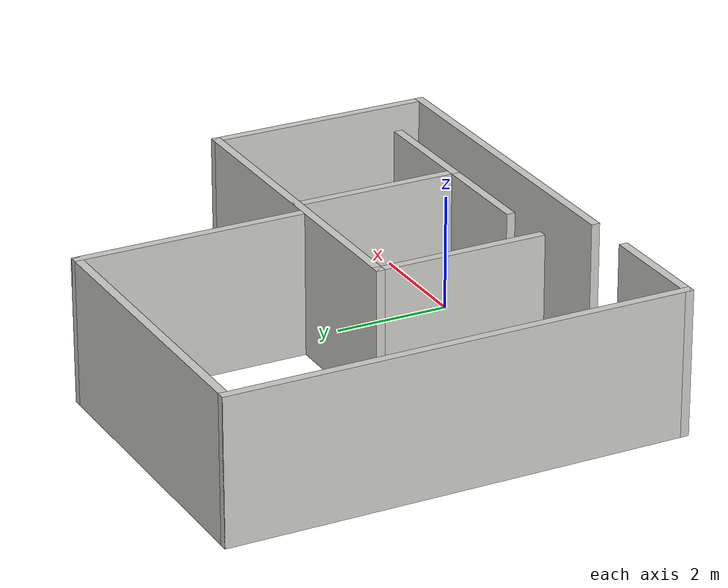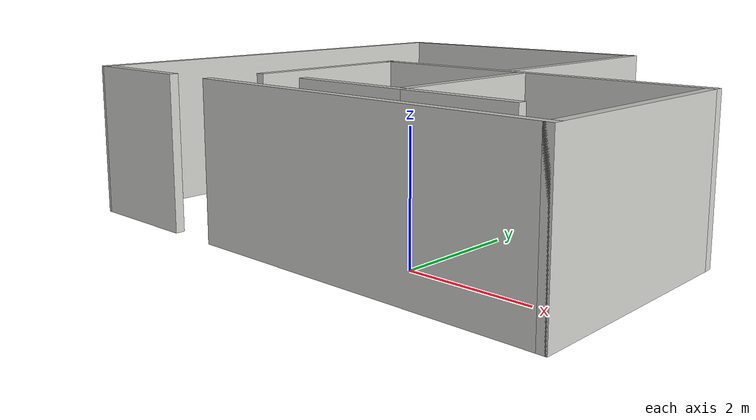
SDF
<?xml version='1.0'?>
<sdf version='1.6'>
  <model name='test_world1'>
    <pose frame=''>-1.47 2.865 0 0 -0 0</pose>
    <link name='Wall_1'>
      <collision name='Wall_1_Collision'>
        <geometry>
          <box>
            <size>6 0.15 2.5</size>
          </box>
        </geometry>
        <pose frame=''>0 0 1.25 0 -0 0</pose>
      </collision>
      <visual name='Wall_1_Visual'>
        <pose frame=''>0 0 1.25 0 -0 0</pose>
        <geometry>
          <box>
            <size>6 0.15 2.5</size>
          </box>
        </geometry>
        <material>
          <script>
            <uri>file://media/materials/scripts/gazebo.material</uri>
            <name>Gazebo/CeilingTiled</name>
          </script>
          <ambient>1 0.764706 0.305882 1</ambient>
        </material>
      </visual>
      <pose frame=''>1.425 -3.925 0 0 -0 0</pose>
    </link>
    <link name='Wall_10'>
      <collision name='Wall_10_Collision'>
        <geometry>
          <box>
            <size>2.03059 0.15 2.5</size>
          </box>
        </geometry>
        <pose frame=''>0 0 1.25 0 -0 0</pose>
      </collision>
      <visual name='Wall_10_Visual'>
        <pose frame=''>0 0 1.25 0 -0 0</pose>
        <geometry>
          <box>
            <size>2.03059 0.15 2.5</size>
          </box>
        </geometry>
        <material>
          <script>
            <uri>file://media/materials/scripts/gazebo.material</uri>
            <name>Gazebo/CeilingTiled</name>
          </script>
          <ambient>1 0.764706 0.305882 1</ambient>
        </material>
      </visual>
      <pose frame=''>2.27432 -2.93006 0 0 -0 0</pose>
    </link>
    <link name='Wall_14'>
      <collision name='Wall_14_Collision'>
        <geometry>
          <box>
            <size>2 0.15 2.5</size>
          </box>
        </geometry>
        <pose frame=''>0 0 1.25 0 -0 0</pose>
      </collision>
      <visual name='Wall_14_Visual'>
        <pose frame=''>0 0 1.25 0 -0 0</pose>
        <geometry>
          <box>
            <size>2 0.15 2.5</size>
          </box>
        </geometry>
        <material>
          <script>
            <uri>file://media/materials/scripts/gazebo.material</uri>
            <name>Gazebo/CeilingTiled</name>
          </script>
          <ambient>1 0.764706 0.305882 1</ambient>
        </material>
      </visual>
      <pose frame=''>-3.425 -3.925 0 0 -0 0</pose>
    </link>
    <link name='Wall_18'>
      <collision name='Wall_18_Collision'>
        <geometry>
          <box>
            <size>8 0.15 2.5</size>
          </box>
        </geometry>
        <pose frame=''>0 0 1.25 0 -0 0</pose>
      </collision>
      <visual name='Wall_18_Visual'>
        <pose frame=''>0 0 1.25 0 -0 0</pose>
        <geometry>
          <box>
            <size>8 0.15 2.5</size>
          </box>
        </geometry>
        <material>
          <script>
            <uri>file://media/materials/scripts/gazebo.material</uri>
            <name>Gazebo/CeilingTiled</name>
          </script>
          <ambient>0.435294 0.796078 0.67451 1</ambient>
        </material>
      </visual>
      <pose frame=''>-4.35 0 0 0 -0 1.5708</pose>
    </link>
    <link name='Wall_19'>
      <collision name='Wall_19_Collision'>
        <geometry>
          <box>
            <size>5.5 0.15 2.5</size>
          </box>
        </geometry>
        <pose frame=''>0 0 1.25 0 -0 0</pose>
      </collision>
      <visual name='Wall_19_Visual'>
        <pose frame=''>0 0 1.25 0 -0 0</pose>
        <geometry>
          <box>
            <size>5.5 0.15 2.5</size>
          </box>
        </geometry>
        <material>
          <script>
            <uri>file://media/materials/scripts/gazebo.material</uri>
            <name>Gazebo/CeilingTiled</name>
          </script>
          <ambient>1 0.764706 0.305882 1</ambient>
        </material>
      </visual>
      <pose frame=''>-1.675 3.925 0 0 -0 0</pose>
    </link>
    <link name='Wall_2'>
      <collision name='Wall_2_Collision'>
        <geometry>
          <box>
            <size>4 0.15 2.5</size>
          </box>
        </geometry>
        <pose frame=''>0 0 1.25 0 -0 0</pose>
      </collision>
      <visual name='Wall_2_Visual'>
        <pose frame=''>0 0 1.25 0 -0 0</pose>
        <geometry>
          <box>
            <size>4 0.15 2.5</size>
          </box>
        </geometry>
        <material>
          <script>
            <uri>file://media/materials/scripts/gazebo.material</uri>
            <name>Gazebo/CeilingTiled</name>
          </script>
          <ambient>1 0.764706 0.305882 1</ambient>
        </material>
      </visual>
      <pose frame=''>4.35 -2 0 0 -0 1.5708</pose>
    </link>
    <link name='Wall_20'>
      <collision name='Wall_20_Collision'>
        <geometry>
          <box>
            <size>4 0.15 2.5</size>
          </box>
        </geometry>
        <pose frame=''>0 0 1.25 0 -0 0</pose>
      </collision>
      <visual name='Wall_20_Visual'>
        <pose frame=''>0 0 1.25 0 -0 0</pose>
        <geometry>
          <box>
            <size>4 0.15 2.5</size>
          </box>
        </geometry>
        <material>
          <script>
            <uri>file://media/materials/scripts/gazebo.material</uri>
            <name>Gazebo/CeilingTiled</name>
          </script>
          <ambient>1 0.764706 0.305882 1</ambient>
        </material>
      </visual>
      <pose frame=''>1 2 0 0 0 -1.5708</pose>
    </link>
    <link name='Wall_4'>
      <collision name='Wall_4_Collision'>
        <geometry>
          <box>
            <size>6 0.15 2.5</size>
          </box>
        </geometry>
        <pose frame=''>0 0 1.25 0 -0 0</pose>
      </collision>
      <visual name='Wall_4_Visual'>
        <pose frame=''>0 0 1.25 0 -0 0</pose>
        <geometry>
          <box>
            <size>6 0.15 2.5</size>
          </box>
        </geometry>
        <material>
          <script>
            <uri>file://media/materials/scripts/gazebo.material</uri>
            <name>Gazebo/CeilingTiled</name>
          </script>
          <ambient>1 0.764706 0.305882 1</ambient>
        </material>
      </visual>
      <pose frame=''>1.425 -0.075 0 0 -0 3.14159</pose>
    </link>
    <link name='Wall_5'>
      <collision name='Wall_5_Collision'>
        <geometry>
          <box>
            <size>3 0.15 2.5</size>
          </box>
        </geometry>
        <pose frame=''>0 0 1.25 0 -0 0</pose>
      </collision>
      <visual name='Wall_5_Visual'>
        <pose frame=''>0 0 1.25 0 -0 0</pose>
        <geometry>
          <box>
            <size>3 0.15 2.5</size>
          </box>
        </geometry>
        <material>
          <script>
            <uri>file://media/materials/scripts/gazebo.material</uri>
            <name>Gazebo/CeilingTiled</name>
          </script>
          <ambient>0.435294 0.796078 0.67451 1</ambient>
        </material>
      </visual>
      <pose frame=''>-1.5 -1.5 0 0 0 -1.5708</pose>
    </link>
    <link name='Wall_7'>
      <collision name='Wall_7_Collision'>
        <geometry>
          <box>
            <size>3 0.15 2.5</size>
          </box>
        </geometry>
        <pose frame=''>0 0 1.25 0 -0 0</pose>
      </collision>
      <visual name='Wall_7_Visual'>
        <pose frame=''>0 0 1.25 0 -0 0</pose>
        <geometry>
          <box>
            <size>3 0.15 2.5</size>
          </box>
        </geometry>
        <material>
          <script>
            <uri>file://media/materials/scripts/gazebo.material</uri>
            <name>Gazebo/CeilingTiled</name>
          </script>
          <ambient>0.435294 0.796078 0.67451 1</ambient>
        </material>
      </visual>
      <pose frame=''>1.33402 -1.50506 0 0 0 -1.5708</pose>
    </link>
    <link name='Wall_8'>
      <collision name='Wall_8_Collision'>
        <geometry>
          <box>
            <size>2 0.15 2.5</size>
          </box>
        </geometry>
        <pose frame=''>0 0 1.25 0 -0 0</pose>
      </collision>
      <visual name='Wall_8_Visual'>
        <pose frame=''>0 0 1.25 0 -0 0</pose>
        <geometry>
          <box>
            <size>2 0.15 2.5</size>
          </box>
        </geometry>
        <material>
          <script>
            <uri>file://media/materials/scripts/gazebo.material</uri>
            <name>Gazebo/CeilingTiled</name>
          </script>
          <ambient>1 0.764706 0.305882 1</ambient>
        </material>
      </visual>
      <pose frame=''>0.409023 -2.93006 0 0 -0 3.14159</pose>
    </link>
    <static>1</static>
  </model>
</sdf>
